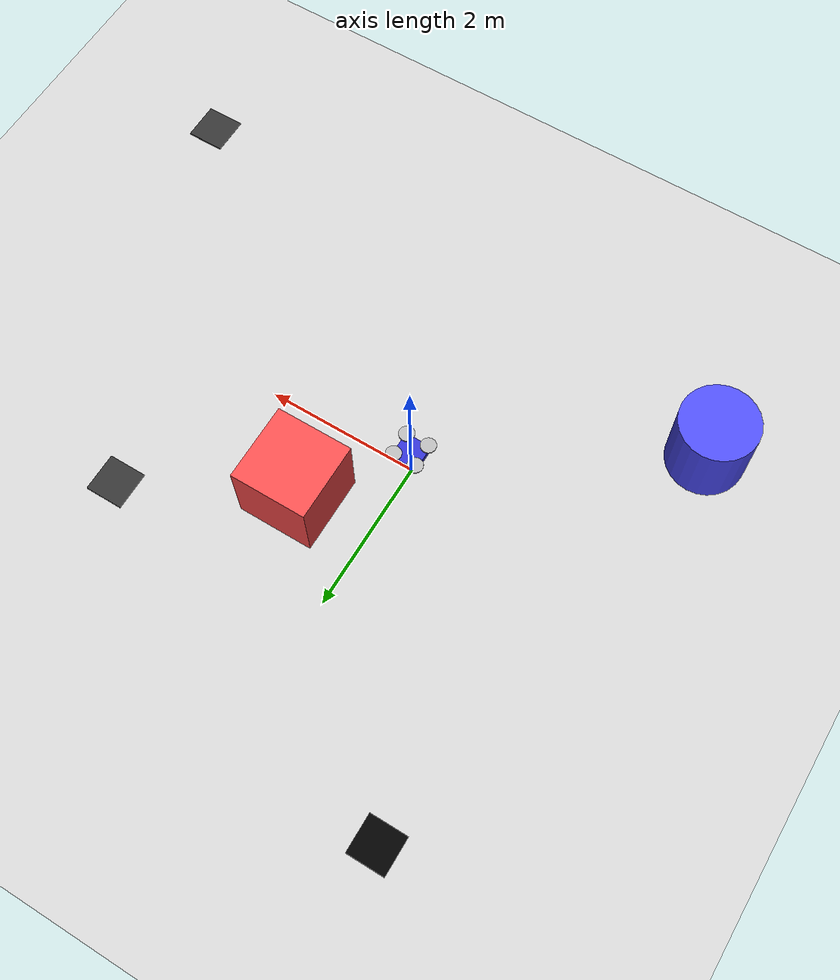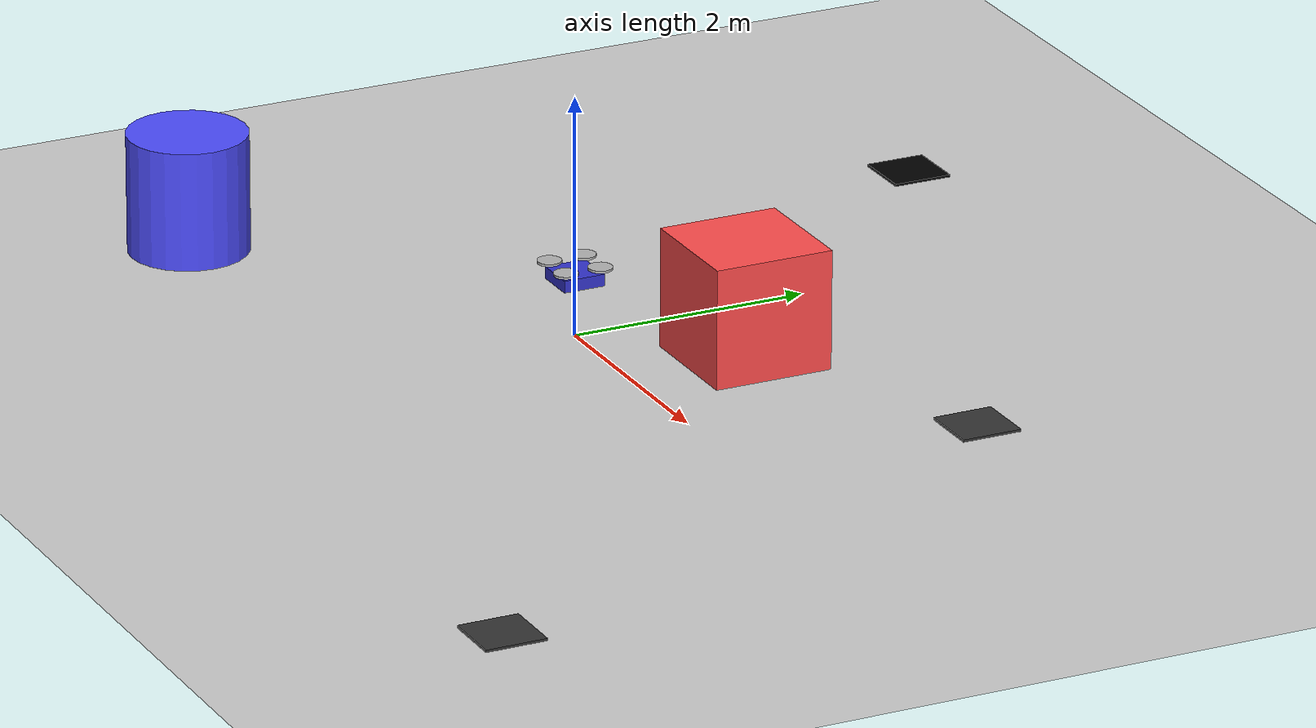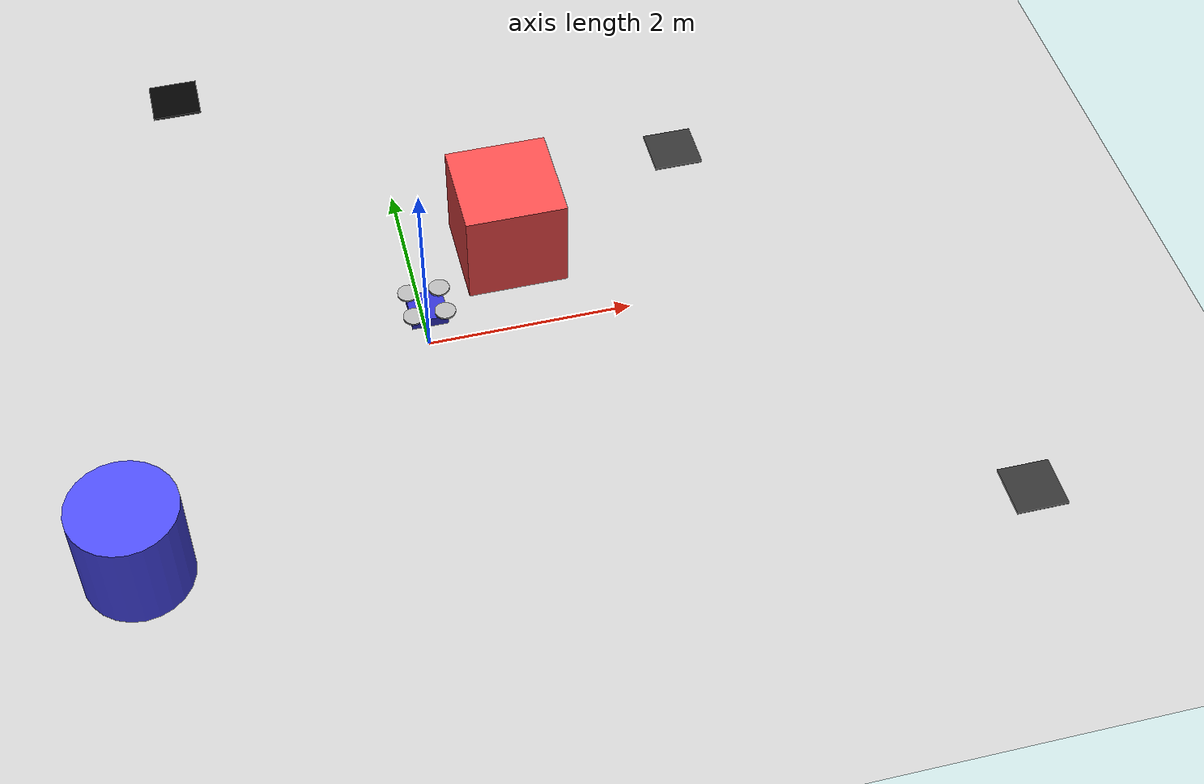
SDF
<?xml version="1.0"?>
<sdf version="1.8">
  <world name="drone_docking">
    <physics name="1ms" type="ignored">
      <max_step_size>0.001</max_step_size>
      <real_time_factor>1.0</real_time_factor>
    </physics>

    <!-- Add plugins needed for physics, etc. -->
    <plugin filename="gz-sim-physics-system" name="gz::sim::systems::Physics"></plugin>
    <plugin filename="gz-sim-scene-broadcaster-system" name="gz::sim::systems::SceneBroadcaster"></plugin>
    <plugin filename="gz-sim-sensors-system" name="gz::sim::systems::Sensors">
      <render_engine>ogre2</render_engine>
    </plugin>
    <plugin filename="gz-sim-user-commands-system" name="gz::sim::systems::UserCommands"></plugin>

    <!-- Add light -->
    <light type="directional" name="sun">
      <cast_shadows>true</cast_shadows>
      <pose>0 0 10 0 0 0</pose>
      <diffuse>0.8 0.8 0.8 1</diffuse>
      <specular>0.2 0.2 0.2 1</specular>
      <direction>-0.5 0.1 -0.9</direction>
    </light>

    <!-- Add ground plane -->
    <model name="ground_plane">
      <static>true</static>
      <link name="link">
        <collision name="collision">
          <geometry>
            <plane>
              <normal>0 0 1</normal>
              <size>100 100</size>
            </plane>
          </geometry>
        </collision>
        <visual name="visual">
          <geometry>
            <plane>
              <normal>0 0 1</normal>
              <size>100 100</size>
            </plane>
          </geometry>
          <material>
            <ambient>0.8 0.8 0.8 1</ambient>
            <diffuse>0.8 0.8 0.8 1</diffuse>
          </material>
        </visual>
      </link>
    </model>

    <!-- Drone model defined directly in the world file -->
    <model name="quadcopter">
      <pose>0 0 0.5 0 0 0</pose>
      <link name="base_link">
        <pose>0 0 0 0 0 0</pose>
        <inertial>
          <mass>1.5</mass>
          <inertia>
            <ixx>0.0347</ixx>
            <ixy>0</ixy>
            <ixz>0</ixz>
            <iyy>0.0347</iyy>
            <iyz>0</iyz>
            <izz>0.0693</izz>
          </inertia>
        </inertial>

        <!-- Body -->
        <collision name="collision">
          <geometry>
            <box>
              <size>0.35 0.35 0.1</size>
            </box>
          </geometry>
        </collision>

        <visual name="visual">
          <geometry>
            <box>
              <size>0.35 0.35 0.1</size>
            </box>
          </geometry>
          <material>
            <ambient>0.2 0.2 0.8 1</ambient>
            <diffuse>0.2 0.2 0.8 1</diffuse>
          </material>
        </visual>

        <!-- Downward-facing camera -->
        <sensor name="camera" type="camera">
          <pose>0 0 -0.05 0 1.5707 0</pose>
          <camera>
            <horizontal_fov>1.047</horizontal_fov>
            <image>
              <width>640</width>
              <height>480</height>
            </image>
            <clip>
              <near>0.1</near>
              <far>100</far>
            </clip>
          </camera>
          <always_on>1</always_on>
          <update_rate>30</update_rate>
          <visualize>true</visualize>
          <topic>camera</topic>
        </sensor>
      </link>

      <!-- Rotor 1 -->
      <link name="rotor1">
        <pose>0.15 0.15 0.1 0 0 0</pose>
        <visual name="visual">
          <geometry>
            <cylinder>
              <radius>0.1</radius>
              <length>0.02</length>
            </cylinder>
          </geometry>
          <material>
            <ambient>0.7 0.7 0.7 1</ambient>
            <diffuse>0.7 0.7 0.7 1</diffuse>
          </material>
        </visual>
      </link>

      <!-- Rotor 2 -->
      <link name="rotor2">
        <pose>-0.15 0.15 0.1 0 0 0</pose>
        <visual name="visual">
          <geometry>
            <cylinder>
              <radius>0.1</radius>
              <length>0.02</length>
            </cylinder>
          </geometry>
          <material>
            <ambient>0.7 0.7 0.7 1</ambient>
            <diffuse>0.7 0.7 0.7 1</diffuse>
          </material>
        </visual>
      </link>

      <!-- Rotor 3 -->
      <link name="rotor3">
        <pose>-0.15 -0.15 0.1 0 0 0</pose>
        <visual name="visual">
          <geometry>
            <cylinder>
              <radius>0.1</radius>
              <length>0.02</length>
            </cylinder>
          </geometry>
          <material>
            <ambient>0.7 0.7 0.7 1</ambient>
            <diffuse>0.7 0.7 0.7 1</diffuse>
          </material>
        </visual>
      </link>

      <!-- Rotor 4 -->
      <link name="rotor4">
        <pose>0.15 -0.15 0.1 0 0 0</pose>
        <visual name="visual">
          <geometry>
            <cylinder>
              <radius>0.1</radius>
              <length>0.02</length>
            </cylinder>
          </geometry>
          <material>
            <ambient>0.7 0.7 0.7 1</ambient>
            <diffuse>0.7 0.7 0.7 1</diffuse>
          </material>
        </visual>
      </link>

      <!-- Joints -->
      <joint name="rotor1_joint" type="fixed">
        <parent>base_link</parent>
        <child>rotor1</child>
      </joint>

      <joint name="rotor2_joint" type="fixed">
        <parent>base_link</parent>
        <child>rotor2</child>
      </joint>

      <joint name="rotor3_joint" type="fixed">
        <parent>base_link</parent>
        <child>rotor3</child>
      </joint>

      <joint name="rotor4_joint" type="fixed">
        <parent>base_link</parent>
        <child>rotor4</child>
      </joint>

      <!-- Multicopter velocity control plugin -->
      <plugin filename="gz-sim-multicopter-control-system" name="gz::sim::systems::MulticopterVelocityControl">
        <robotNamespace>drone</robotNamespace>
        <commandSubTopic>cmd_vel</commandSubTopic>
        <enableSubTopic>enable</enableSubTopic>
        <comLinkName>base_link</comLinkName>
        <velocityGain>2.7 2.7 2.7</velocityGain>
        <attitudeGain>2 3 0.15</attitudeGain>
        <angularRateGain>0.4 0.52 0.18</angularRateGain>
        <maximumLinearAcceleration>2 2 2</maximumLinearAcceleration>
        <maximumLinearVelocity>5 5 5</maximumLinearVelocity>
        <maximumAngularVelocity>3 3 3</maximumAngularVelocity>
        <linearVelocityNoiseMean>0 0 0</linearVelocityNoiseMean>
        <linearVelocityNoiseStdDev>0 0 0</linearVelocityNoiseStdDev>
        <angularVelocityNoiseMean>0 0 0</angularVelocityNoiseMean>
        <angularVelocityNoiseStdDev>0 0 0</angularVelocityNoiseStdDev>
        <enableAutoLeveling>true</enableAutoLeveling>
      </plugin>
    </model>

    <!-- QR Patterns defined directly in the world -->
    <model name="qr_pattern_1">
      <pose>3 2 0.01 0 0 0</pose>
      <static>true</static>
      <link name="link">
        <visual name="visual">
          <geometry>
            <box>
              <size>0.5 0.5 0.02</size>
            </box>
          </geometry>
          <material>
            <ambient>1 1 1 1</ambient>
            <diffuse>0.2 0.2 0.2 1</diffuse>
            <emissive>0.5 0.5 0.5 1</emissive>
            <specular>0.5 0.5 0.5 1</specular>
          </material>
        </visual>
        <collision name="collision">
          <geometry>
            <box>
              <size>0.5 0.5 0.01</size>
            </box>
          </geometry>
        </collision>
      </link>
    </model>

    <model name="qr_pattern_2">
      <pose>-2 4 0.01 0 0 0</pose>
      <static>true</static>
      <link name="link">
        <visual name="visual">
          <geometry>
            <box>
              <size>0.5 0.5 0.02</size>
            </box>
          </geometry>
          <material>
            <ambient>0 0 0 1</ambient>
            <diffuse>0 0 0 1</diffuse>
            <emissive>0.5 0.5 0.5 1</emissive>
            <specular>0.5 0.5 0.5 1</specular>
          </material>
        </visual>
        <collision name="collision">
          <geometry>
            <box>
              <size>0.5 0.5 0.01</size>
            </box>
          </geometry>
        </collision>
      </link>
    </model>

    <model name="qr_pattern_3">
      <pose>5 -3 0.01 0 0 0</pose>
      <static>true</static>
      <link name="link">
        <visual name="visual">
          <geometry>
            <box>
              <size>0.5 0.5 0.02</size>
            </box>
          </geometry>
          <material>
            <ambient>1 1 1 1</ambient>
            <diffuse>0.2 0.2 0.2 1</diffuse>
            <emissive>0.5 0.5 0.5 1</emissive>
            <specular>0.5 0.5 0.5 1</specular>
          </material>
        </visual>
        <collision name="collision">
          <geometry>
            <box>
              <size>0.5 0.5 0.01</size>
            </box>
          </geometry>
        </collision>
      </link>
    </model>

    <!-- Add some obstacles -->
    <model name="box1">
      <pose>1 1 0.5 0 0 0</pose>
      <link name="link">
        <collision name="collision">
          <geometry>
            <box>
              <size>1 1 1</size>
            </box>
          </geometry>
        </collision>
        <visual name="visual">
          <geometry>
            <box>
              <size>1 1 1</size>
            </box>
          </geometry>
          <material>
            <ambient>1 0.3 0.3 1</ambient>
            <diffuse>1 0.3 0.3 1</diffuse>
          </material>
        </visual>
      </link>
      <static>true</static>
    </model>

    <model name="cylinder1">
      <pose>-3 -2 0.5 0 0 0</pose>
      <link name="link">
        <collision name="collision">
          <geometry>
            <cylinder>
              <radius>0.5</radius>
              <length>1</length>
            </cylinder>
          </geometry>
        </collision>
        <visual name="visual">
          <geometry>
            <cylinder>
              <radius>0.5</radius>
              <length>1</length>
            </cylinder>
          </geometry>
          <material>
            <ambient>0.3 0.3 1 1</ambient>
            <diffuse>0.3 0.3 1 1</diffuse>
          </material>
        </visual>
      </link>
      <static>true</static>
    </model>
  </world>
</sdf>
